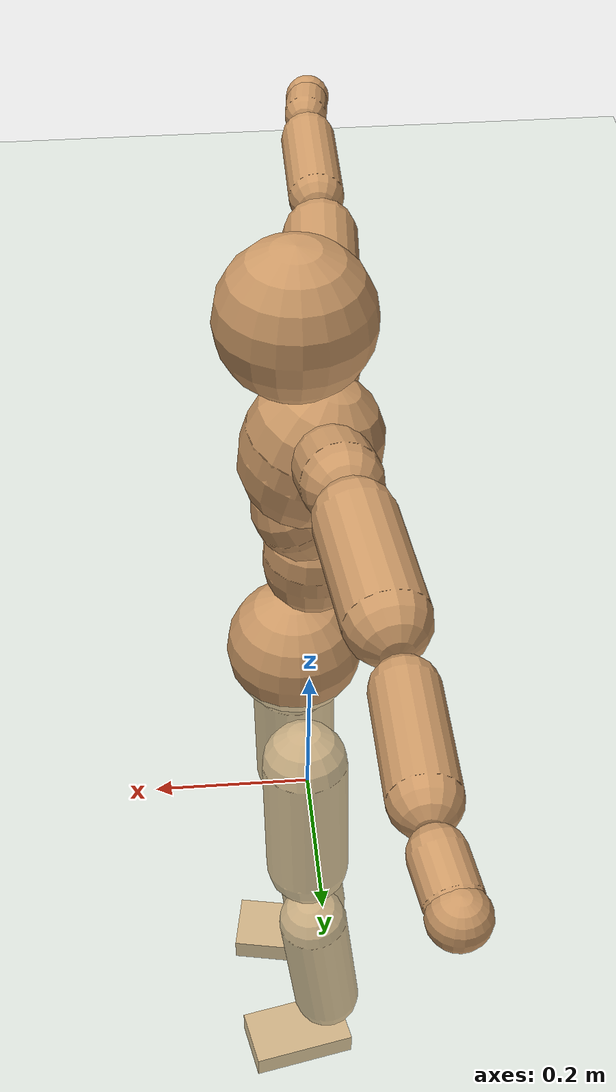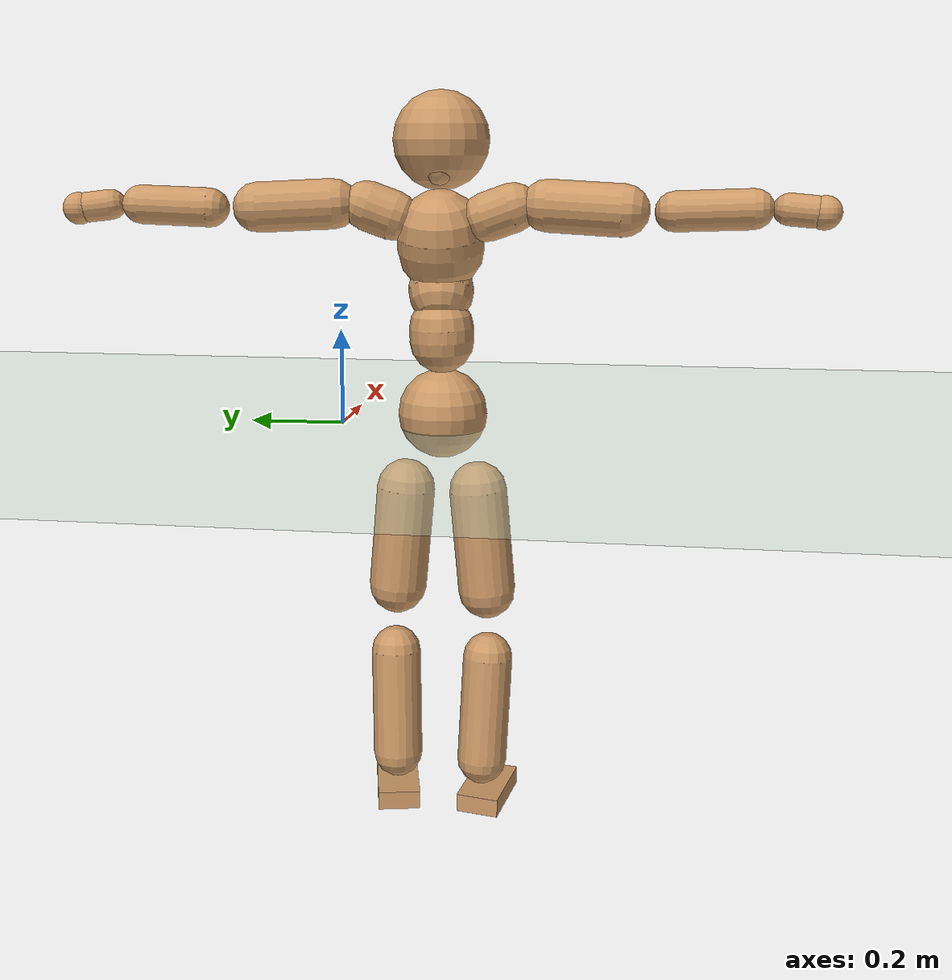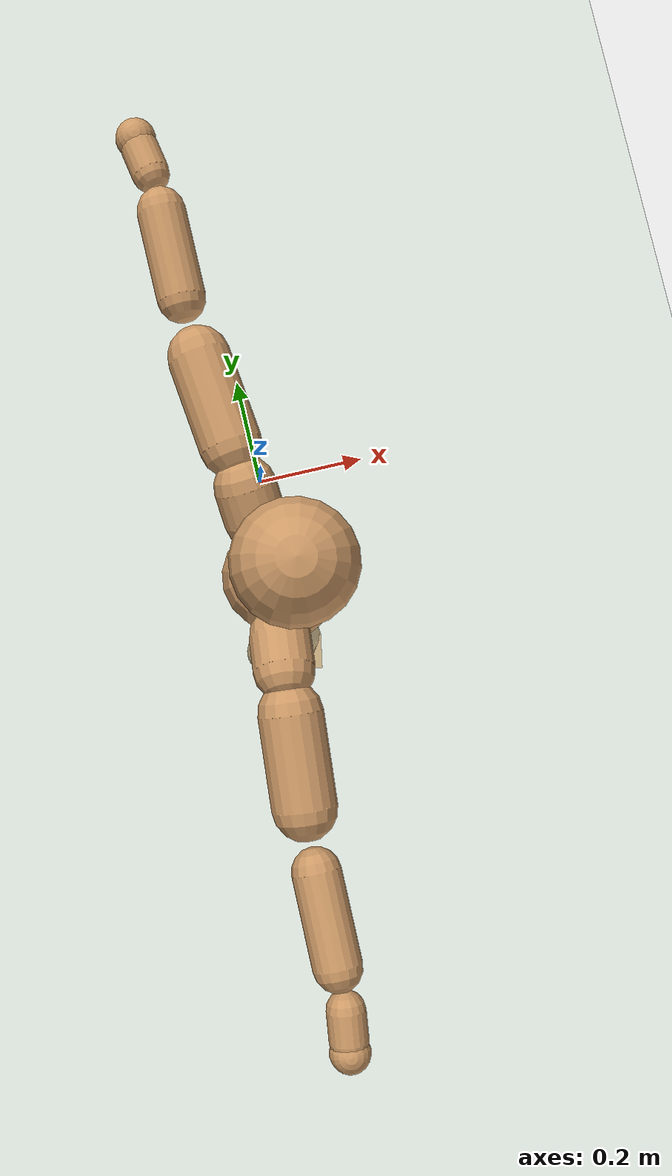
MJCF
<mujoco model="humanoid">
  <compiler coordinate="local"/>
  <default>
    <joint damping="0.0" armature="0.01" stiffness="0.0" limited="true"/>
    <geom conaffinity="1" condim="3" contype="7" margin="0.001" rgba="0.8 0.6 .4 1"/>
  </default>
  <asset>
    <texture type="skybox" builtin="gradient" rgb1=".4 .5 .6" rgb2="0 0 0" width="100" height="100"/>
    <texture builtin="flat" height="1278" mark="cross" markrgb="1 1 1" name="texgeom" random="0.01" rgb1="0.8 0.6 0.4" rgb2="0.8 0.6 0.4" type="cube" width="127"/>
    <texture builtin="checker" height="100" name="texplane" rgb1="0 0 0" rgb2="0.8 0.8 0.8" type="2d" width="100"/>
    <material name="MatPlane" reflectance="0.5" shininess="1" specular="1" texrepeat="60 60" texture="texplane"/>
    <material name="geom" texture="texgeom" texuniform="true"/>
  </asset>
  <worldbody>
    <light cutoff="100" diffuse="1 1 1" dir="-0 0 -1.3" directional="true" exponent="1" pos="0 0 1.3" specular=".1 .1 .1"/>
    <geom conaffinity="1" condim="3" name="floor" pos="0 0 0" rgba="0.8 0.9 0.8 1" size="100 100 .2" type="plane" material="MatPlane"/>
    <body name="Pelvis" pos="-0.0012 -0.2167 0.0289">
      <freejoint name="Pelvis"/>
      <geom type="sphere" contype="1" conaffinity="1" density="500" size="0.0945" pos="0.0000 0.0000 0.0000" name="Pelvis"/>
      <body name="L_Hip" pos="-0.0078 0.0723 -0.0911">
        <joint name="L_Hip_x" type="hinge" pos="0 0 0" axis="1 0 0" stiffness="800" damping="80" armature="0.02" range="-180.0000 180.0000"/>
        <joint name="L_Hip_y" type="hinge" pos="0 0 0" axis="0 1 0" stiffness="800" damping="80" armature="0.02" range="-180.0000 180.0000"/>
        <joint name="L_Hip_z" type="hinge" pos="0 0 0" axis="0 0 1" stiffness="800" damping="80" armature="0.02" range="-180.0000 180.0000"/>
        <geom type="capsule" contype="1" conaffinity="1" density="500" fromto="-0.0015 0.0061 -0.0732 -0.0062 0.0243 -0.2926" size="0.062" name="L_Hip"/>
        <body name="L_Knee" pos="-0.0077 0.0303 -0.3658">
          <joint name="L_Knee_x" type="hinge" pos="0 0 0" axis="1 0 0" stiffness="800" damping="80" armature="0.02" range="-180.0000 180.0000"/>
          <joint name="L_Knee_y" type="hinge" pos="0 0 0" axis="0 1 0" stiffness="800" damping="80" armature="0.02" range="-180.0000 180.0000"/>
          <joint name="L_Knee_z" type="hinge" pos="0 0 0" axis="0 0 1" stiffness="800" damping="80" armature="0.02" range="-180.0000 180.0000"/>
          <geom type="capsule" contype="1" conaffinity="1" density="500" fromto="-0.0089 -0.0024 -0.0773 -0.0355 -0.0094 -0.3092" size="0.0536" name="L_Knee"/>
          <body name="L_Ankle" pos="-0.0444 -0.0118 -0.3864">
            <joint name="L_Ankle_x" type="hinge" pos="0 0 0" axis="1 0 0" stiffness="800" damping="80" armature="0.02" range="-180.0000 180.0000"/>
            <joint name="L_Ankle_y" type="hinge" pos="0 0 0" axis="0 1 0" stiffness="800" damping="80" armature="0.02" range="-180.0000 180.0000"/>
            <joint name="L_Ankle_z" type="hinge" pos="0 0 0" axis="0 0 1" stiffness="800" damping="80" armature="0.02" range="-180.0000 180.0000"/>
            <geom type="box" contype="1" conaffinity="1" density="500" pos="0.0577 0.0118 -0.0276" size="0.0828 0.0462 0.0204" quat="0.9950 0.0000 0.0000 0.1002" name="L_Ankle"/>
            <body name="L_Toe" pos="0.1155 0.0235 -0.0552">
              <joint name="L_Toe_x" type="hinge" pos="0 0 0" axis="1 0 0" stiffness="500" damping="50" armature="0.02" range="-180.0000 180.0000"/>
              <joint name="L_Toe_y" type="hinge" pos="0 0 0" axis="0 1 0" stiffness="500" damping="50" armature="0.02" range="-180.0000 180.0000"/>
              <joint name="L_Toe_z" type="hinge" pos="0 0 0" axis="0 0 1" stiffness="500" damping="50" armature="0.02" range="-180.0000 180.0000"/>
              <geom type="box" contype="1" conaffinity="1" density="500" pos="0.0000 0.0000 0.0269" size="0.001 0.0023 0.001" quat="0.9943 0.0000 0.0000 0.1067" name="L_Toe"/>
            </body>
          </body>
        </body>
      </body>
      <body name="R_Hip" pos="-0.0045 -0.0698 -0.0906">
        <joint name="R_Hip_x" type="hinge" pos="0 0 0" axis="1 0 0" stiffness="800" damping="80" armature="0.02" range="-180.0000 180.0000"/>
        <joint name="R_Hip_y" type="hinge" pos="0 0 0" axis="0 1 0" stiffness="800" damping="80" armature="0.02" range="-180.0000 180.0000"/>
        <joint name="R_Hip_z" type="hinge" pos="0 0 0" axis="0 0 1" stiffness="800" damping="80" armature="0.02" range="-180.0000 180.0000"/>
        <geom type="capsule" contype="1" conaffinity="1" density="500" fromto="-0.0021 -0.0072 -0.0744 -0.0082 -0.0289 -0.2976" size="0.0613" name="R_Hip"/>
        <body name="R_Knee" pos="-0.0103 -0.0361 -0.372">
          <joint name="R_Knee_x" type="hinge" pos="0 0 0" axis="1 0 0" stiffness="800" damping="80" armature="0.02" range="-180.0000 180.0000"/>
          <joint name="R_Knee_y" type="hinge" pos="0 0 0" axis="0 1 0" stiffness="800" damping="80" armature="0.02" range="-180.0000 180.0000"/>
          <joint name="R_Knee_z" type="hinge" pos="0 0 0" axis="0 0 1" stiffness="800" damping="80" armature="0.02" range="-180.0000 180.0000"/>
          <geom type="capsule" contype="1" conaffinity="1" density="500" fromto="-0.0086 0.0028 -0.0773 -0.0342 0.0113 -0.3092" size="0.0538" name="R_Knee"/>
          <body name="R_Ankle" pos="-0.0428 0.0141 -0.3865">
            <joint name="R_Ankle_x" type="hinge" pos="0 0 0" axis="1 0 0" stiffness="800" damping="80" armature="0.02" range="-180.0000 180.0000"/>
            <joint name="R_Ankle_y" type="hinge" pos="0 0 0" axis="0 1 0" stiffness="800" damping="80" armature="0.02" range="-180.0000 180.0000"/>
            <joint name="R_Ankle_z" type="hinge" pos="0 0 0" axis="0 0 1" stiffness="800" damping="80" armature="0.02" range="-180.0000 180.0000"/>
            <geom type="box" contype="1" conaffinity="1" density="500" pos="0.0596 -0.0113 -0.0235" size="0.0839 0.0466 0.0201" quat="0.9956 0.0000 0.0000 -0.0937" name="R_Ankle"/>
            <body name="R_Toe" pos="0.1192 -0.0226 -0.0469">
              <joint name="R_Toe_x" type="hinge" pos="0 0 0" axis="1 0 0" stiffness="500" damping="50" armature="0.02" range="-180.0000 180.0000"/>
              <joint name="R_Toe_y" type="hinge" pos="0 0 0" axis="0 1 0" stiffness="500" damping="50" armature="0.02" range="-180.0000 180.0000"/>
              <joint name="R_Toe_z" type="hinge" pos="0 0 0" axis="0 0 1" stiffness="500" damping="50" armature="0.02" range="-180.0000 180.0000"/>
              <geom type="box" contype="1" conaffinity="1" density="500" pos="0.0000 0.0000 0.0255" size="0.0009 0.0023 0.0011" quat="0.9964 0.0000 0.0000 -0.0842" name="R_Toe"/>
            </body>
          </body>
        </body>
      </body>
      <body name="Torso" pos="-0.0232 -0.0027 0.1054">
        <joint name="Torso_x" type="hinge" pos="0 0 0" axis="1 0 0" stiffness="1000" damping="100" armature="0.02" range="-180.0000 180.0000"/>
        <joint name="Torso_y" type="hinge" pos="0 0 0" axis="0 1 0" stiffness="1000" damping="100" armature="0.02" range="-180.0000 180.0000"/>
        <joint name="Torso_z" type="hinge" pos="0 0 0" axis="0 0 1" stiffness="1000" damping="100" armature="0.02" range="-180.0000 180.0000"/>
        <geom type="capsule" contype="1" conaffinity="1" density="500" fromto="-0.0012 0.0023 0.0783 -0.0008 0.0015 0.0522" size="0.067053" name="Torso"/>
        <body name="Spine" pos="-0.002 0.0038 0.1304">
          <joint name="Spine_x" type="hinge" pos="0 0 0" axis="1 0 0" stiffness="1000" damping="100" armature="0.02" range="-180.0000 180.0000"/>
          <joint name="Spine_y" type="hinge" pos="0 0 0" axis="0 1 0" stiffness="1000" damping="100" armature="0.02" range="-180.0000 180.0000"/>
          <joint name="Spine_z" type="hinge" pos="0 0 0" axis="0 0 1" stiffness="1000" damping="100" armature="0.02" range="-180.0000 180.0000"/>
          <geom type="capsule" contype="1" conaffinity="1" density="500" fromto="0.0177 0.0013 0.0300 0.0118 0.0008 0.0200" size="0.067425" name="Spine"/>
          <body name="Chest" pos="0.0294 0.0021 0.05">
            <joint name="Chest_x" type="hinge" pos="0 0 0" axis="1 0 0" stiffness="1000" damping="100" armature="0.02" range="-180.0000 180.0000"/>
            <joint name="Chest_y" type="hinge" pos="0 0 0" axis="0 1 0" stiffness="1000" damping="100" armature="0.02" range="-180.0000 180.0000"/>
            <joint name="Chest_z" type="hinge" pos="0 0 0" axis="0 0 1" stiffness="1000" damping="100" armature="0.02" range="-180.0000 180.0000"/>
            <geom type="capsule" contype="1" conaffinity="1" density="500" fromto="-0.0264 -0.0007 0.0899 -0.0176 -0.0005 0.0599" size="0.089559" name="Chest"/>
            <body name="Neck" pos="-0.0516 -0.002 0.2119">
              <joint name="Neck_x" type="hinge" pos="0 0 0" axis="1 0 0" stiffness="500" damping="50" armature="0.02" range="-180.0000 180.0000"/>
              <joint name="Neck_y" type="hinge" pos="0 0 0" axis="0 1 0" stiffness="500" damping="50" armature="0.02" range="-180.0000 180.0000"/>
              <joint name="Neck_z" type="hinge" pos="0 0 0" axis="0 0 1" stiffness="500" damping="50" armature="0.02" range="-180.0000 180.0000"/>
              <geom type="capsule" contype="1" conaffinity="1" density="500" fromto="0.0100 0.0006 0.0125 0.0402 0.0024 0.0501" size="0.038688" name="Neck"/>
              <body name="Head" pos="0.0502 0.003 0.0626">
                <joint name="Head_x" type="hinge" pos="0 0 0" axis="1 0 0" stiffness="500" damping="50" armature="0.02" range="-180.0000 180.0000"/>
                <joint name="Head_y" type="hinge" pos="0 0 0" axis="0 1 0" stiffness="500" damping="50" armature="0.02" range="-180.0000 180.0000"/>
                <joint name="Head_z" type="hinge" pos="0 0 0" axis="0 0 1" stiffness="500" damping="50" armature="0.02" range="-180.0000 180.0000"/>
                <geom type="sphere" contype="1" conaffinity="1" density="500" size="0.0992" pos="0.0000 0.0000 0.0000" name="Head"/>
              </body>
            </body>
            <body name="L_Thorax" pos="-0.0378 0.0766 0.1199">
              <joint name="L_Thorax_x" type="hinge" pos="0 0 0" axis="1 0 0" stiffness="500" damping="50" armature="0.02" range="-180.0000 180.0000"/>
              <joint name="L_Thorax_y" type="hinge" pos="0 0 0" axis="0 1 0" stiffness="500" damping="50" armature="0.02" range="-180.0000 180.0000"/>
              <joint name="L_Thorax_z" type="hinge" pos="0 0 0" axis="0 0 1" stiffness="500" damping="50" armature="0.02" range="-180.0000 180.0000"/>
              <geom type="capsule" contype="1" conaffinity="1" density="500" fromto="-0.0016 0.0174 0.0064 -0.0062 0.0694 0.0255" size="0.0507" name="L_Thorax"/>
              <body name="L_Shoulder" pos="-0.0078 0.0868 0.0319">
                <joint name="L_Shoulder_x" type="hinge" pos="0 0 0" axis="1 0 0" stiffness="500" damping="50" armature="0.02" range="-720.0000 720.0000"/>
                <joint name="L_Shoulder_y" type="hinge" pos="0 0 0" axis="0 1 0" stiffness="500" damping="50" armature="0.02" range="-720.0000 720.0000"/>
                <joint name="L_Shoulder_z" type="hinge" pos="0 0 0" axis="0 0 1" stiffness="500" damping="50" armature="0.02" range="-720.0000 720.0000"/>
                <geom type="capsule" contype="1" conaffinity="1" density="500" fromto="-0.0057 0.0509 -0.0024 -0.0228 0.2034 -0.0097" size="0.051" name="L_Shoulder"/>
                <body name="L_Elbow" pos="-0.0285 0.2543 -0.0121">
                  <joint name="L_Elbow_x" type="hinge" pos="0 0 0" axis="1 0 0" stiffness="500" damping="50" armature="0.02" range="-720.0000 720.0000"/>
                  <joint name="L_Elbow_y" type="hinge" pos="0 0 0" axis="0 1 0" stiffness="500" damping="50" armature="0.02" range="-720.0000 720.0000"/>
                  <joint name="L_Elbow_z" type="hinge" pos="0 0 0" axis="0 0 1" stiffness="500" damping="50" armature="0.02" range="-720.0000 720.0000"/>
                  <geom type="capsule" contype="1" conaffinity="1" density="500" fromto="0.0001 0.0482 0.0018 0.0004 0.1928 0.0073" size="0.0395" name="L_Elbow"/>
                  <body name="L_Wrist" pos="0.0004 0.241 0.0091">
                    <joint name="L_Wrist_x" type="hinge" pos="0 0 0" axis="1 0 0" stiffness="300" damping="30" armature="0.02" range="-180.0000 180.0000"/>
                    <joint name="L_Wrist_y" type="hinge" pos="0 0 0" axis="0 1 0" stiffness="300" damping="30" armature="0.02" range="-180.0000 180.0000"/>
                    <joint name="L_Wrist_z" type="hinge" pos="0 0 0" axis="0 0 1" stiffness="300" damping="30" armature="0.02" range="-180.0000 180.0000"/>
                    <geom type="capsule" contype="1" conaffinity="1" density="500" fromto="-0.0027 0.0163 -0.0020 -0.0108 0.0651 -0.0079" size="0.0308" name="L_Wrist"/>
                    <body name="L_Hand" pos="-0.0134 0.0814 -0.0099">
                      <joint name="L_Hand_x" type="hinge" pos="0 0 0" axis="1 0 0" stiffness="300" damping="30" armature="0.02" range="-180.0000 180.0000"/>
                      <joint name="L_Hand_y" type="hinge" pos="0 0 0" axis="0 1 0" stiffness="300" damping="30" armature="0.02" range="-180.0000 180.0000"/>
                      <joint name="L_Hand_z" type="hinge" pos="0 0 0" axis="0 0 1" stiffness="300" damping="30" armature="0.02" range="-180.0000 180.0000"/>
                      <geom type="sphere" contype="1" conaffinity="1" density="500" size="0.0328" pos="0.0000 0.0000 0.0000" name="L_Hand"/>
                    </body>
                  </body>
                </body>
              </body>
            </body>
            <body name="R_Thorax" pos="-0.0426 -0.0782 0.1177">
              <joint name="R_Thorax_x" type="hinge" pos="0 0 0" axis="1 0 0" stiffness="500" damping="50" armature="0.02" range="-180.0000 180.0000"/>
              <joint name="R_Thorax_y" type="hinge" pos="0 0 0" axis="0 1 0" stiffness="500" damping="50" armature="0.02" range="-180.0000 180.0000"/>
              <joint name="R_Thorax_z" type="hinge" pos="0 0 0" axis="0 0 1" stiffness="500" damping="50" armature="0.02" range="-180.0000 180.0000"/>
              <geom type="capsule" contype="1" conaffinity="1" density="500" fromto="-0.0020 -0.0181 0.0066 -0.0079 -0.0724 0.0262" size="0.0496" name="R_Thorax"/>
              <body name="R_Shoulder" pos="-0.0098 -0.0905 0.0328">
                <joint name="R_Shoulder_x" type="hinge" pos="0 0 0" axis="1 0 0" stiffness="500" damping="50" armature="0.02" range="-720.0000 720.0000"/>
                <joint name="R_Shoulder_y" type="hinge" pos="0 0 0" axis="0 1 0" stiffness="500" damping="50" armature="0.02" range="-720.0000 720.0000"/>
                <joint name="R_Shoulder_z" type="hinge" pos="0 0 0" axis="0 0 1" stiffness="500" damping="50" armature="0.02" range="-720.0000 720.0000"/>
                <geom type="capsule" contype="1" conaffinity="1" density="500" fromto="-0.0041 -0.0497 -0.0026 -0.0165 -0.1988 -0.0106" size="0.0523" name="R_Shoulder"/>
                <body name="R_Elbow" pos="-0.0206 -0.2485 -0.0132">
                  <joint name="R_Elbow_x" type="hinge" pos="0 0 0" axis="1 0 0" stiffness="500" damping="50" armature="0.02" range="-720.0000 720.0000"/>
                  <joint name="R_Elbow_y" type="hinge" pos="0 0 0" axis="0 1 0" stiffness="500" damping="50" armature="0.02" range="-720.0000 720.0000"/>
                  <joint name="R_Elbow_z" type="hinge" pos="0 0 0" axis="0 0 1" stiffness="500" damping="50" armature="0.02" range="-720.0000 720.0000"/>
                  <geom type="capsule" contype="1" conaffinity="1" density="500" fromto="-0.0006 -0.0495 0.0018 -0.0024 -0.1980 0.0072" size="0.0395" name="R_Elbow"/>
                  <body name="R_Wrist" pos="-0.003 -0.2475 0.009">
                    <joint name="R_Wrist_x" type="hinge" pos="0 0 0" axis="1 0 0" stiffness="300" damping="30" armature="0.02" range="-180.0000 180.0000"/>
                    <joint name="R_Wrist_y" type="hinge" pos="0 0 0" axis="0 1 0" stiffness="300" damping="30" armature="0.02" range="-180.0000 180.0000"/>
                    <joint name="R_Wrist_z" type="hinge" pos="0 0 0" axis="0 0 1" stiffness="300" damping="30" armature="0.02" range="-180.0000 180.0000"/>
                    <geom type="capsule" contype="1" conaffinity="1" density="500" fromto="-0.0021 -0.0164 -0.0015 -0.0085 -0.0654 -0.0059" size="0.0314" name="R_Wrist"/>
                    <body name="R_Hand" pos="-0.0106 -0.0818 -0.0074">
                      <joint name="R_Hand_x" type="hinge" pos="0 0 0" axis="1 0 0" stiffness="300" damping="30" armature="0.02" range="-180.0000 180.0000"/>
                      <joint name="R_Hand_y" type="hinge" pos="0 0 0" axis="0 1 0" stiffness="300" damping="30" armature="0.02" range="-180.0000 180.0000"/>
                      <joint name="R_Hand_z" type="hinge" pos="0 0 0" axis="0 0 1" stiffness="300" damping="30" armature="0.02" range="-180.0000 180.0000"/>
                      <geom type="sphere" contype="1" conaffinity="1" density="500" size="0.0329" pos="0.0000 0.0000 0.0000" name="R_Hand"/>
                    </body>
                  </body>
                </body>
              </body>
            </body>
          </body>
        </body>
      </body>
    </body>
  </worldbody>
  <actuator>
    <motor name="L_Hip_x" joint="L_Hip_x" gear="500"/>
    <motor name="L_Hip_y" joint="L_Hip_y" gear="500"/>
    <motor name="L_Hip_z" joint="L_Hip_z" gear="500"/>
    <motor name="L_Knee_x" joint="L_Knee_x" gear="500"/>
    <motor name="L_Knee_y" joint="L_Knee_y" gear="500"/>
    <motor name="L_Knee_z" joint="L_Knee_z" gear="500"/>
    <motor name="L_Ankle_x" joint="L_Ankle_x" gear="500"/>
    <motor name="L_Ankle_y" joint="L_Ankle_y" gear="500"/>
    <motor name="L_Ankle_z" joint="L_Ankle_z" gear="500"/>
    <motor name="L_Toe_x" joint="L_Toe_x" gear="500"/>
    <motor name="L_Toe_y" joint="L_Toe_y" gear="500"/>
    <motor name="L_Toe_z" joint="L_Toe_z" gear="500"/>
    <motor name="R_Hip_x" joint="R_Hip_x" gear="500"/>
    <motor name="R_Hip_y" joint="R_Hip_y" gear="500"/>
    <motor name="R_Hip_z" joint="R_Hip_z" gear="500"/>
    <motor name="R_Knee_x" joint="R_Knee_x" gear="500"/>
    <motor name="R_Knee_y" joint="R_Knee_y" gear="500"/>
    <motor name="R_Knee_z" joint="R_Knee_z" gear="500"/>
    <motor name="R_Ankle_x" joint="R_Ankle_x" gear="500"/>
    <motor name="R_Ankle_y" joint="R_Ankle_y" gear="500"/>
    <motor name="R_Ankle_z" joint="R_Ankle_z" gear="500"/>
    <motor name="R_Toe_x" joint="R_Toe_x" gear="500"/>
    <motor name="R_Toe_y" joint="R_Toe_y" gear="500"/>
    <motor name="R_Toe_z" joint="R_Toe_z" gear="500"/>
    <motor name="Torso_x" joint="Torso_x" gear="500"/>
    <motor name="Torso_y" joint="Torso_y" gear="500"/>
    <motor name="Torso_z" joint="Torso_z" gear="500"/>
    <motor name="Spine_x" joint="Spine_x" gear="500"/>
    <motor name="Spine_y" joint="Spine_y" gear="500"/>
    <motor name="Spine_z" joint="Spine_z" gear="500"/>
    <motor name="Chest_x" joint="Chest_x" gear="500"/>
    <motor name="Chest_y" joint="Chest_y" gear="500"/>
    <motor name="Chest_z" joint="Chest_z" gear="500"/>
    <motor name="Neck_x" joint="Neck_x" gear="500"/>
    <motor name="Neck_y" joint="Neck_y" gear="500"/>
    <motor name="Neck_z" joint="Neck_z" gear="500"/>
    <motor name="Head_x" joint="Head_x" gear="500"/>
    <motor name="Head_y" joint="Head_y" gear="500"/>
    <motor name="Head_z" joint="Head_z" gear="500"/>
    <motor name="L_Thorax_x" joint="L_Thorax_x" gear="500"/>
    <motor name="L_Thorax_y" joint="L_Thorax_y" gear="500"/>
    <motor name="L_Thorax_z" joint="L_Thorax_z" gear="500"/>
    <motor name="L_Shoulder_x" joint="L_Shoulder_x" gear="500"/>
    <motor name="L_Shoulder_y" joint="L_Shoulder_y" gear="500"/>
    <motor name="L_Shoulder_z" joint="L_Shoulder_z" gear="500"/>
    <motor name="L_Elbow_x" joint="L_Elbow_x" gear="500"/>
    <motor name="L_Elbow_y" joint="L_Elbow_y" gear="500"/>
    <motor name="L_Elbow_z" joint="L_Elbow_z" gear="500"/>
    <motor name="L_Wrist_x" joint="L_Wrist_x" gear="500"/>
    <motor name="L_Wrist_y" joint="L_Wrist_y" gear="500"/>
    <motor name="L_Wrist_z" joint="L_Wrist_z" gear="500"/>
    <motor name="L_Hand_x" joint="L_Hand_x" gear="500"/>
    <motor name="L_Hand_y" joint="L_Hand_y" gear="500"/>
    <motor name="L_Hand_z" joint="L_Hand_z" gear="500"/>
    <motor name="R_Thorax_x" joint="R_Thorax_x" gear="500"/>
    <motor name="R_Thorax_y" joint="R_Thorax_y" gear="500"/>
    <motor name="R_Thorax_z" joint="R_Thorax_z" gear="500"/>
    <motor name="R_Shoulder_x" joint="R_Shoulder_x" gear="500"/>
    <motor name="R_Shoulder_y" joint="R_Shoulder_y" gear="500"/>
    <motor name="R_Shoulder_z" joint="R_Shoulder_z" gear="500"/>
    <motor name="R_Elbow_x" joint="R_Elbow_x" gear="500"/>
    <motor name="R_Elbow_y" joint="R_Elbow_y" gear="500"/>
    <motor name="R_Elbow_z" joint="R_Elbow_z" gear="500"/>
    <motor name="R_Wrist_x" joint="R_Wrist_x" gear="500"/>
    <motor name="R_Wrist_y" joint="R_Wrist_y" gear="500"/>
    <motor name="R_Wrist_z" joint="R_Wrist_z" gear="500"/>
    <motor name="R_Hand_x" joint="R_Hand_x" gear="500"/>
    <motor name="R_Hand_y" joint="R_Hand_y" gear="500"/>
    <motor name="R_Hand_z" joint="R_Hand_z" gear="500"/>
  </actuator>
  <contact>
    <exclude body1="Torso" body2="Chest"/>
    <exclude body1="Head" body2="Chest"/>
    <exclude body1="R_Knee" body2="R_Toe"/>
    <exclude body1="R_Knee" body2="L_Ankle"/>
    <exclude body1="R_Knee" body2="L_Toe"/>
    <exclude body1="L_Knee" body2="L_Toe"/>
    <exclude body1="L_Knee" body2="R_Ankle"/>
    <exclude body1="L_Knee" body2="R_Toe"/>
    <exclude body1="L_Shoulder" body2="Chest"/>
    <exclude body1="R_Shoulder" body2="Chest"/>
  </contact>
  <sensor/>
  <size njmax="700" nconmax="700"/>
</mujoco>
